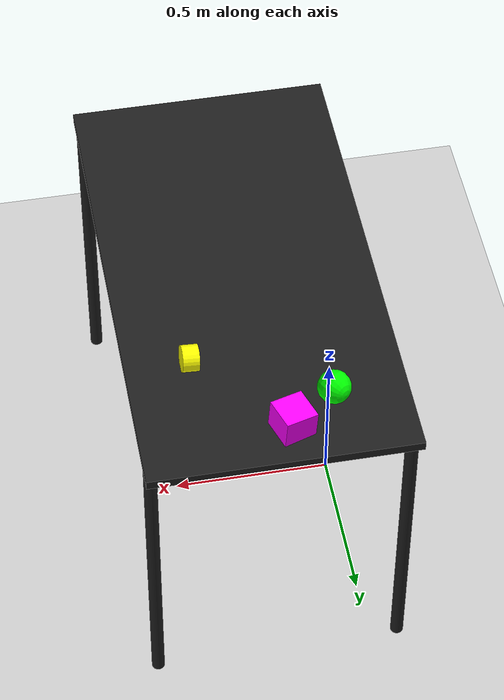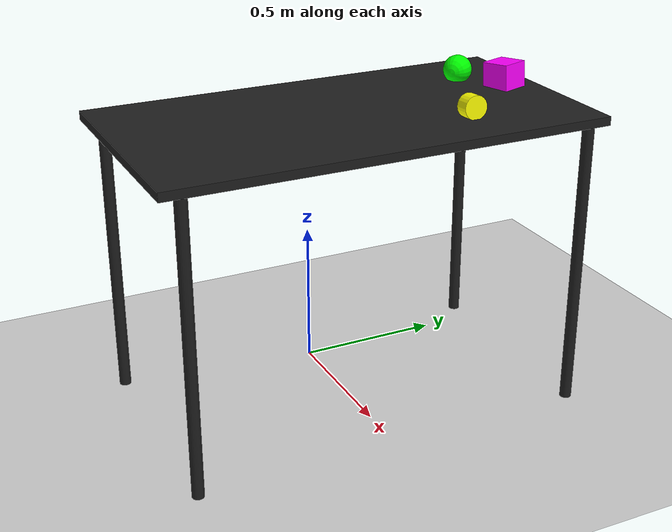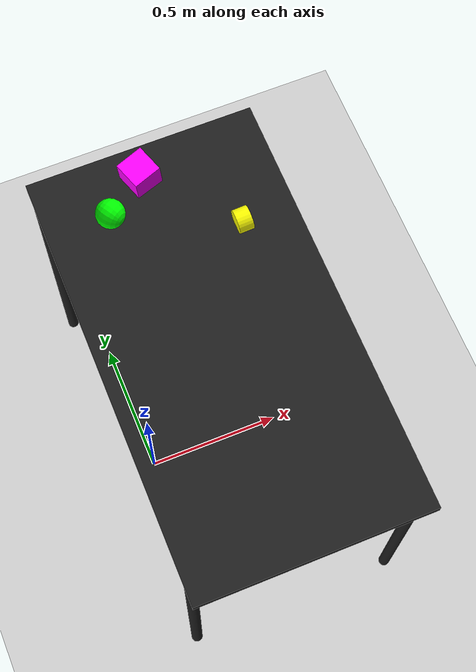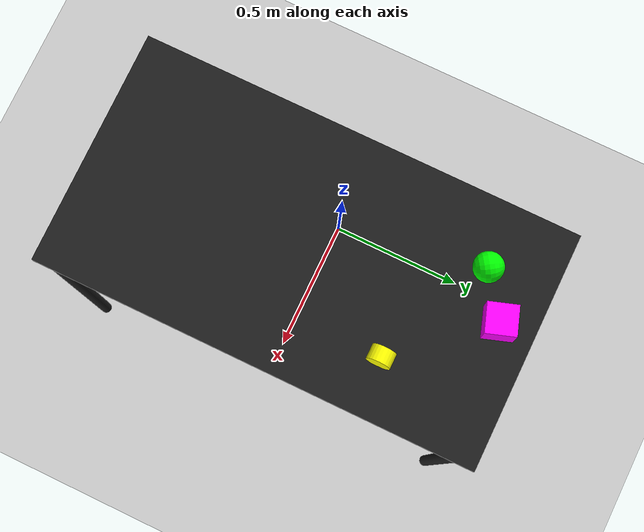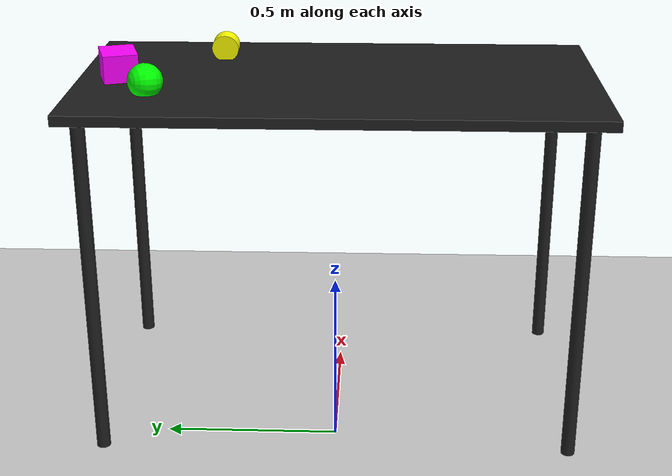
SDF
<?xml version="1.0" ?>
<sdf version="1.6">
  <world name="arm_world">
    <plugin
      filename="gz-sim-physics-system"
      name="gz::sim::systems::Physics">
      <engine>
        <filename>libgz-physics-bullet-featherstone-plugin.so</filename>
      </engine>
    </plugin>

    <plugin
      filename="gz-sim-user-commands-system"
      name="gz::sim::systems::UserCommands">
    </plugin>

    <plugin
      filename="gz-sim-scene-broadcaster-system"
      name="gz::sim::systems::SceneBroadcaster">
    </plugin>

    <plugin
      filename="gz-sim-sensors-system"
      name="gz::sim::systems::Sensors">
      <render_engine>ogre2</render_engine>
    </plugin>

    <gravity>0.0 0.0 -9.8</gravity>

    <scene>
      <shadows>false</shadows>
    </scene>

    <gui>
      <camera name="user_camera">
        <pose>0.75 -0.75 1.4 0 0.29 2.21</pose>
      </camera>
    </gui>

    <include>
      <uri>
        https://fuel.gazebosim.org/1.0/OpenRobotics/models/Sun
      </uri>
    </include>

    <model name="table">
      <static>true</static>
      <include>
        <uri>model://table</uri>
      </include>
      <pose>0.29 0 0 0 0 1.5708</pose>
    </model>

    <model name="cylinder">
      <include>
        <uri>model://objects/small/cylinder</uri>
      </include>
      <pose>0.5 0.35 1.05 0 1.5 0</pose>
    </model>

    <model name="cube">
      <include>
        <uri>model://objects/small/cube</uri>
      </include>
      <pose>0.25 0.63 1.05 0 -1.5 -2.82</pose>
    </model>

    <model name="sphere">
      <include>
        <uri>model://objects/small/sphere</uri>
      </include>
      <pose>0.11 0.53 1.05 0 -1.5 -1.0</pose>
    </model>

    <model name="ground_plane">
      <static>true</static>
      <link name="link">
        <collision name="collision">
          <geometry>
            <plane>
              <normal>0 0 1</normal>
            </plane>
          </geometry>
          <surface>
            <friction>
              <torsional>
                <coefficient>0.0</coefficient>
              </torsional>
            </friction>
          </surface>
        </collision>
        <visual name="visual">
          <geometry>
            <plane>
              <normal>0 0 1</normal>
              <size>100 100</size>
            </plane>
          </geometry>
          <material>
            <ambient>0.8 0.8 0.8 1</ambient>
            <diffuse>0.8 0.8 0.8 1</diffuse>
            <specular>0.8 0.8 0.8 1</specular>
          </material>
        </visual>
      </link>
    </model>

  </world>
</sdf>

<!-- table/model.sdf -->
<sdf version="1.5">
  <model name="table">
    <static>true</static>
    <link name="link">
      <collision name="surface">
        <pose>0 0 1.0 0 0 0</pose>
        <geometry>
          <box>
            <size>1.5 0.8 0.03</size>
          </box>
        </geometry>
        <surface>
          <friction>
            <ode>
              <mu>0.6</mu>
              <mu2>0.6</mu2>
            </ode>
          </friction>
        </surface>
      </collision>
      <visual name="surface">
        <pose>0 0 1.0 0 0 0</pose>
        <geometry>
          <box>
            <size>1.5 0.8 0.03</size>
          </box>
        </geometry>
        <material>
          <script>
            <uri>file://media/materials/scripts/gazebo.material</uri>
            <name>Gazebo/Black</name>
          </script>
        </material>
      </visual>
      <collision name="front_left_leg">
        <pose>0.68 0.38 0.5 0 0 0</pose>
        <geometry>
          <cylinder>
            <radius>0.02</radius>
            <length>1.0</length>
          </cylinder>
        </geometry>
      </collision>
      <visual name="front_left_leg">
        <pose>0.68 0.38 0.5 0 0 0</pose>
        <geometry>
          <cylinder>
            <radius>0.02</radius>
            <length>1.0</length>
          </cylinder>
        </geometry>
        <material>
          <script>
            <uri>file://media/materials/scripts/gazebo.material</uri>
            <name>Gazebo/Black</name>
          </script>
        </material>
      </visual>
      <collision name="front_right_leg">
        <pose>0.68 -0.38 0.5 0 0 0</pose>
        <geometry>
          <cylinder>
            <radius>0.02</radius>
            <length>1.0</length>
          </cylinder>
        </geometry>
      </collision>
      <visual name="front_right_leg">
        <pose>0.68 -0.38 0.5 0 0 0</pose>
        <geometry>
          <cylinder>
            <radius>0.02</radius>
            <length>1.0</length>
          </cylinder>
        </geometry>
        <material>
          <script>
            <uri>file://media/materials/scripts/gazebo.material</uri>
            <name>Gazebo/Black</name>
          </script>
        </material>
      </visual>
      <collision name="back_right_leg">
        <pose>-0.68 -0.38 0.5 0 0 0</pose>
        <geometry>
          <cylinder>
            <radius>0.02</radius>
            <length>1.0</length>
          </cylinder>
        </geometry>
      </collision>
      <visual name="back_right_leg">
        <pose>-0.68 -0.38 0.5 0 0 0</pose>
        <geometry>
          <cylinder>
            <radius>0.02</radius>
            <length>1.0</length>
          </cylinder>
        </geometry>
        <material>
          <script>
            <uri>file://media/materials/scripts/gazebo.material</uri>
            <name>Gazebo/Black</name>
          </script>
        </material>
      </visual>
      <collision name="back_left_leg">
        <pose>-0.68 0.38 0.5 0 0 0</pose>
        <geometry>
          <cylinder>
            <radius>0.02</radius>
            <length>1.0</length>
          </cylinder>
        </geometry>
      </collision>
      <visual name="back_left_leg">
        <pose>-0.68 0.38 0.5 0 0 0</pose>
        <geometry>
          <cylinder>
            <radius>0.02</radius>
            <length>1.0</length>
          </cylinder>
        </geometry>
        <material>
          <script>
            <uri>file://media/materials/scripts/gazebo.material</uri>
            <name>Gazebo/Black</name>
          </script>
        </material>
      </visual>
    </link>
  </model>
</sdf>

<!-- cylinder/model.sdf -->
<sdf version="1.5">
 <model name='cylinder'>
    <static>false</static>
      <link name='cylinder_link'>
        <inertial>
          <inertia>
            <ixx>0.145</ixx>
            <ixy>0</ixy>
            <ixz>0</ixz>
            <iyy>0.145</iyy>
            <iyz>0</iyz>
            <izz>0.125</izz>
          </inertia>
          <mass>1</mass>
          <pose>0 0 0 0 0 0</pose>
        </inertial>
        <collision name='cylinder_collision'>
          <geometry>
            <cylinder>
              <radius>0.04</radius>
              <length>0.05</length>
            </cylinder>
          </geometry>
          <surface>
            <friction>
              <ode/>
            </friction>
            <bounce/>
            <contact/>
          </surface>
        </collision>
        <visual name='cylinder_visual'>
          <geometry>
            <cylinder>
              <radius>0.04</radius>
              <length>0.05</length>
            </cylinder>
          </geometry>
          <material>
            <ambient>1 1 0 1</ambient>
            <diffuse>1 1 0 1</diffuse>
            <specular>0 0 1 1</specular>
            <emissive>0 0 0 0</emissive>
          </material>
        </visual>
        <pose>0 0 0 0 0 0</pose>
        <enable_wind>false</enable_wind>
      </link>
      <static>false</static>
      <self_collide>false</self_collide>
    </model>
</sdf>

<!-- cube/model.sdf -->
<sdf version="1.5">
  <model name='cube'>
    <static>false</static>
    <link name='cube_link'>
      <inertial>
        <inertia>
          <ixx>0.16666</ixx>
          <ixy>0</ixy>
          <ixz>0</ixz>
          <iyy>0.16666</iyy>
          <iyz>0</iyz>
          <izz>0.16666</izz>
        </inertia>
        <mass>1</mass>
        <pose>0 0 0 0 0 0</pose>
      </inertial>
      <collision name='cube_collision'>
        <geometry>
          <box>
            <size>0.1 0.1 0.1</size>
          </box>
        </geometry>
        <surface>
          <friction>
            <ode/>
          </friction>
          <bounce/>
          <contact/>
        </surface>
      </collision>
      <visual name='cube_visual'>
        <geometry>
          <box>
            <size>0.1 0.1 0.1</size>
          </box>
        </geometry>
        <material>
          <ambient>1 0 1 1</ambient>
          <diffuse>1 0 1 1</diffuse>
          <specular>0 0 1 1</specular>
          <emissive>0 0 0 0</emissive>
        </material>
      </visual>
      <pose>0 0 0 0 0 0</pose>
      <enable_wind>false</enable_wind>
    </link>
    <static>false</static>
    <self_collide>false</self_collide>
  </model>
</sdf>

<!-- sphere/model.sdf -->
<sdf version="1.5">
  <model name="sphere">
    <static>false</static>
    <link name="sphere_link">
      <collision name="collision">
        <geometry>
          <sphere>
            <radius>0.05</radius>
          </sphere>
        </geometry>
      </collision>
      <visual name="visual">
        <geometry>
          <sphere>
            <radius>0.05</radius>
          </sphere>
        </geometry>
        <material>
          <ambient>0 1 0 1</ambient>
          <diffuse>0 1 0 1</diffuse>
          <specular>0 1 0 1</specular>
          <emissive>0 0 0 0</emissive>
        </material>
      </visual>
    </link>
  </model>
</sdf>
